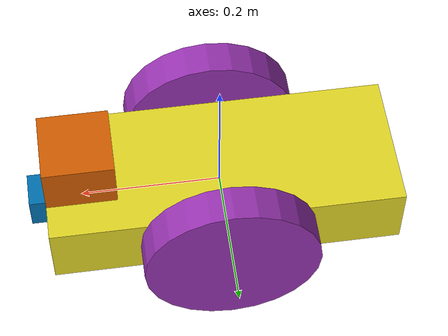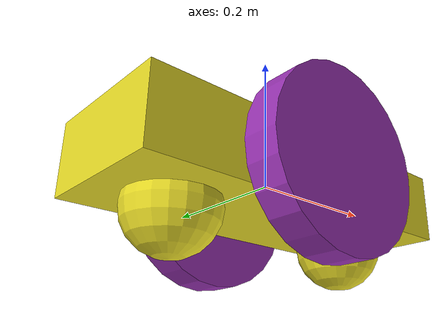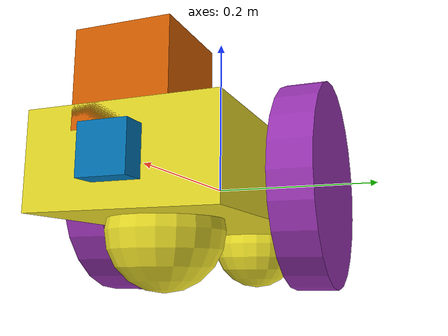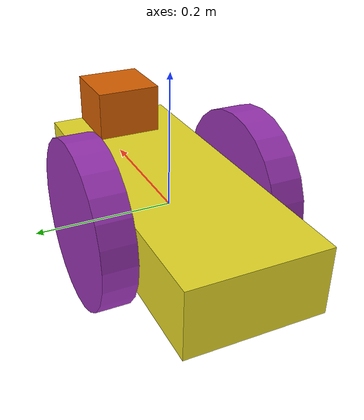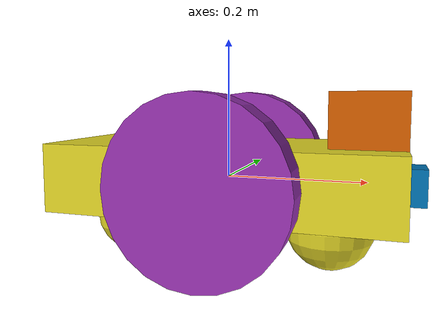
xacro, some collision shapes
<?xml version='1.0'?>

<robot name="my_robot" xmlns:xacro="http://www.ros.org/wiki/xacro">
<xacro:include filename="$(find my_robot)/urdf/my_robot.gazebo" />

  <link name="robot_footprint"></link>

  <joint name="robot_footprint_joint" type="fixed">
    <origin xyz="0 0 0" rpy="0 0 0" />
    <parent link="robot_footprint"/>
    <child link="chassis" />
  </joint>

  <link name='chassis'>
    <pose>0 0 0.1 0 0 0</pose>

    <inertial>
      <mass value="15.0"/>
      <origin xyz="0.0 0 0" rpy=" 0 0 0"/>
      <inertia
          ixx="0.1" ixy="0" ixz="0"
          iyy="0.1" iyz="0"
          izz="0.1"
      />
    </inertial>

    <collision name='collision'>
      <origin xyz="0 0 0" rpy=" 0 0 0"/>
      <geometry>
        <box size=".5 .2 .1"/>
      </geometry>
    </collision>

    <visual name='chassis_visual'>
      <origin xyz="0 0 0" rpy=" 0 0 0"/>
      <geometry>
        <box size=".5 .2 .1"/>
      </geometry>
    </visual>

    <collision name='back_caster_collision'>
      <origin xyz="-0.15 0 -0.0625" rpy=" 0 0 0"/>
      <geometry>
        <sphere radius="0.0624"/>
      </geometry>
    </collision>

    <visual name='back_caster_visual'>
      <origin xyz="-0.15 0 -0.0625" rpy=" 0 0 0"/>
      <geometry>
        <sphere radius="0.0625"/>
      </geometry>
    </visual>

    <collision name='front_caster_collision'>
      <origin xyz="0.15 0 -0.0625" rpy=" 0 0 0"/>
      <geometry>
        <sphere radius="0.0624"/>
      </geometry>
    </collision>

    <visual name='front_caster_visual'>
      <origin xyz="0.15 0 -0.0625" rpy=" 0 0 0"/>
      <geometry>
        <sphere radius="0.0625"/>
      </geometry>
    </visual>

  </link>

  <joint type="continuous" name="left_wheel_hinge">
    <origin xyz="0 0.0 0" rpy="0 0 0"/>
    <child link="left_wheel"/>
    <parent link="chassis"/>
    <axis xyz="0 1 0" rpy="0 0 0"/>
    <limit effort="10000" velocity="1000"/>
    <dynamics damping="1.0" friction="1.0"/>
  </joint>

	<link name = 'left_wheel'>
		<inertial>
			<mass value="5.0"/>
		  	<origin xyz="0.0 0.125 0" rpy=" 0 1.5707 1.5707"/>
		    <inertia
		        ixx="0.1" ixy="0" ixz="0"
		        iyy="0.1" iyz="0"
		        izz="0.1"
		    />
		</inertial>

		<visual>
			<origin xyz="0.0 0.125 0" rpy=" 0 1.5707 1.5707"/>
			<geometry>
		  	<cylinder radius="0.125" length="0.05"/>
		  </geometry>
		</visual>

		<collision>
			<origin xyz="0.0 0.125 0" rpy=" 0 1.5707 1.5707"/>
			<geometry>
		    <cylinder radius="0.125" length="0.05"/>
		  </geometry>
		</collision>
	</link>

  <joint type="continuous" name="right_wheel_hinge">
    <origin xyz="0 -0.125 0" rpy="0 0 0"/>
    <child link="right_wheel"/>
    <parent link="chassis"/>
    <axis xyz="0 1 0" rpy="0 0 0"/>
    <limit effort="10000" velocity="1000"/>
    <dynamics damping="1.0" friction="1.0"/>
  </joint>

	<link name = 'right_wheel'>
		<inertial>
			<mass value="5.0"/>
		  	<origin xyz="0.0 0 0" rpy=" 0 1.5707 1.5707"/>
		    <inertia
		        ixx="0.1" ixy="0" ixz="0"
		        iyy="0.1" iyz="0"
		        izz="0.1"
		    />
		</inertial>

		<visual>
			<origin xyz="0.0 0 0" rpy=" 0 1.5707 1.5707"/>
			<geometry>
		  	<cylinder radius="0.125" length="0.05"/>
		  </geometry>
		</visual>

		<collision>
			<origin xyz="0.0 0 0" rpy=" 0 1.5707 1.5707"/>
			<geometry>
		    <cylinder radius="0.125" length="0.05"/>
		  </geometry>
		</collision>
	</link>

  <joint name="camera_optical_joint" type="fixed">
    <origin xyz="0.25 0 0" rpy="-1.5707 0 -1.5707"/>
    <parent link="chassis"/> <!-- IT was camera_link -->
    <child link="camera_link_optical"/>
  </joint>

  <link name="camera_link_optical">
		<inertial>
			<origin xyz="0.0 0 0" rpy=" 0 0 0"/>
			<box_inertia m="0.1" x="0.05" y="0.05" z="0.05"/>
			<mass value="0.1"/>
     		<inertia
          		ixx="1e-6" ixy="0" ixz="0"
          		iyy="1e-6" iyz="0"
          		izz="1e-6"
      		/>
		</inertial>
		<visual>
			<origin xyz="0.0 0 0" rpy=" 0 0 0"/>
			<geometry>
        			<box size="0.05 0.05 0.05"/>
      			</geometry>
		</visual>
		<collision>
			<origin xyz="0.0 0 0" rpy=" 0 0 0"/>
			<geometry>
        			<box size="0.05 0.05 0.05"/>
      			</geometry>
		</collision>
  </link>

  <joint type="fixed" name="hokuyo_joint">
    <origin xyz="0.20 0 0.075" rpy="0 0 0"/>
    <child link="hokuyo"/>
    <parent link="chassis"/>
    <axis xyz="0 1 0" rpy="0 0 0"/>
  </joint>

	<link name='hokuyo'>
		<inertial>
			<origin xyz="0.0 0 0" rpy=" 0 0 0"/>
			<mass value="1e-5"/>
     		<inertia
          		ixx="1e-6" ixy="0" ixz="0"
          		iyy="1e-6" iyz="0"
          		izz="1e-6"
      		/>
		</inertial>
		<visual>
			<origin xyz="0.0 0 0" rpy=" 0 0 0"/>
			<geometry>
        			<mesh filename="package://my_robot/meshes/hokuyo.dae"/>
      			</geometry>
		</visual>
		<collision>
			<origin xyz="0.0 0 0" rpy=" 0 0 0"/>
			<geometry>
        			<box size="0.1 0.1 0.1"/>
      			</geometry>
		</collision>
	</link>

<gazebo reference="left_wheel">
    <material>Gazebo/Purple</material>
</gazebo>

<gazebo reference="right_wheel">
    <material>Gazebo/Purple</material>
</gazebo>

<gazebo reference="camera">
    <material>Gazebo/Red</material>
</gazebo>

<gazebo reference="chassis">
    <material>Gazebo/Yellow</material>
</gazebo>

</robot>
